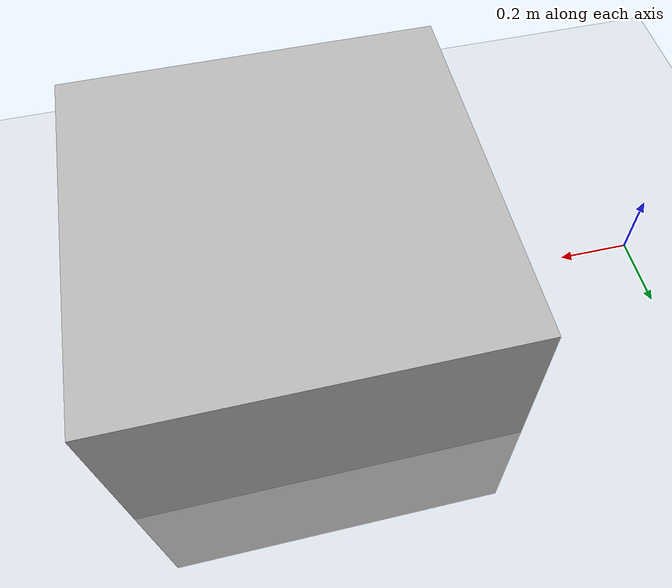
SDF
<?xml version="1.0" ?>
<sdf version="1.5">
  <world name="default">
    <include>
      <uri>model://sun</uri>
    </include>
    <include>
      <uri>model://ground_plane</uri>
    </include>
    <include>
      <uri>model://box1</uri>
      <pose>1 0 0 0 0 0</pose>
    </include>
  </world>
</sdf>

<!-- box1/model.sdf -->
<sdf version="1.4">
<model name="box1">
  <pose>0 0 0.5 0 0 0</pose>
    <link name="link">
      <inertial>
        <mass>1.0</mass>
        <inertia>
          <ixx>0.083</ixx>
          <ixy>0.0</ixy>
          <ixz>0.0</ixz>
          <iyy>0.083</iyy>
          <iyz>0.0</iyz>
          <izz>0.083</izz>
        </inertia>
      </inertial>
      <collision name="collision">
        <geometry>
          <box>
            <size>1 1 1</size>
          </box>
        </geometry>
      </collision>
      <visual name="visual">
        <geometry>
          <box>
            <size>1 1 1</size>
          </box>
        </geometry>
      </visual>
    </link>
  </model>
</sdf>
